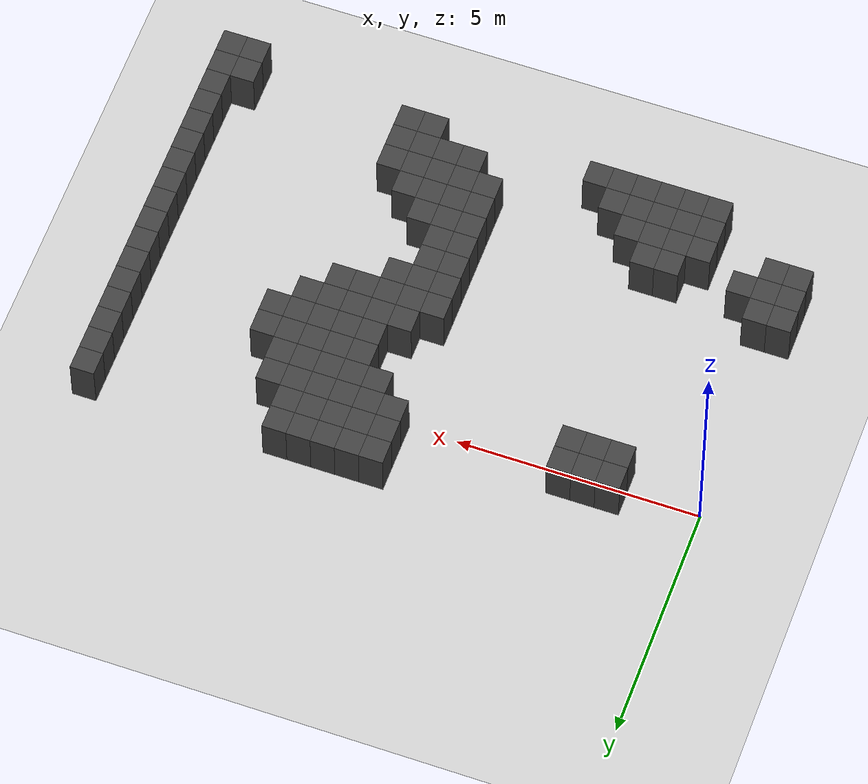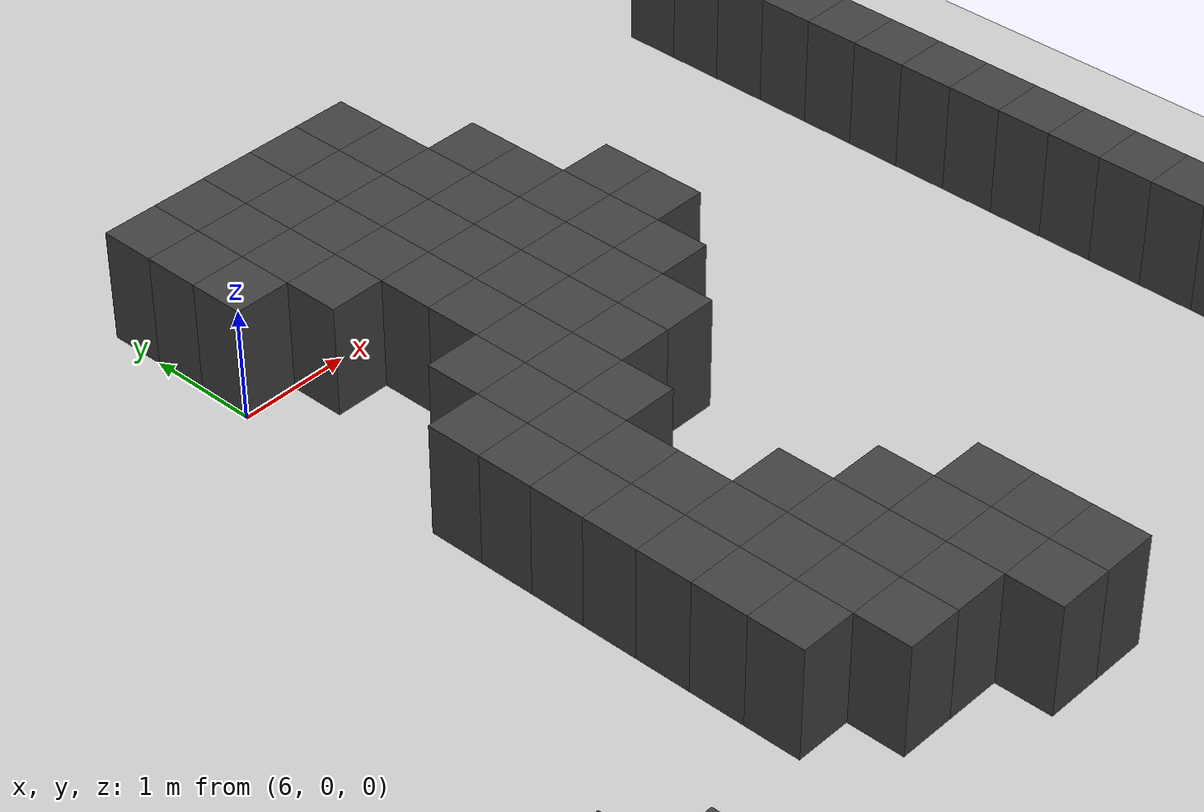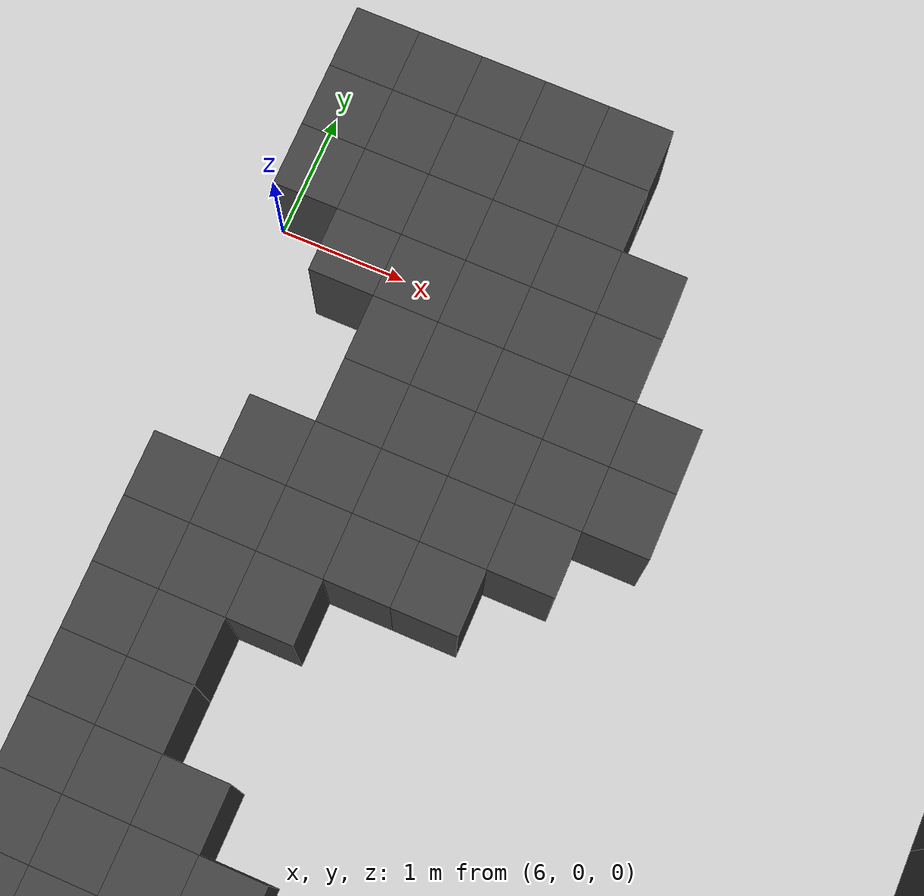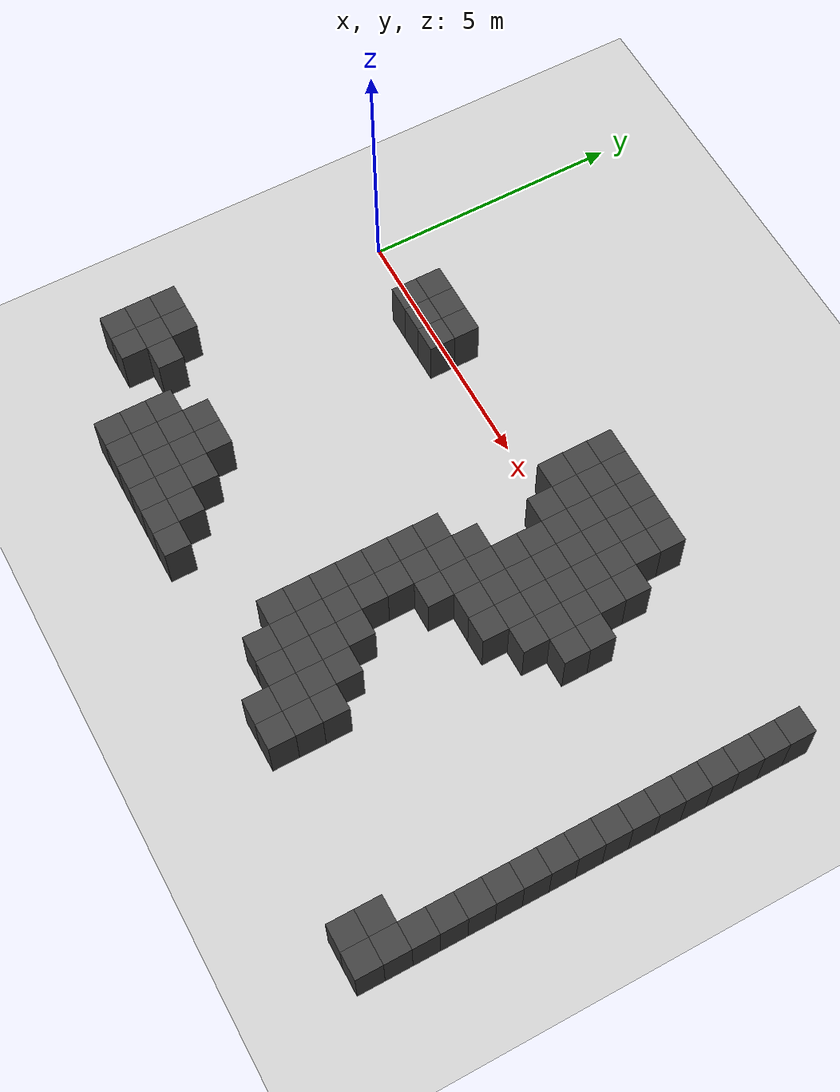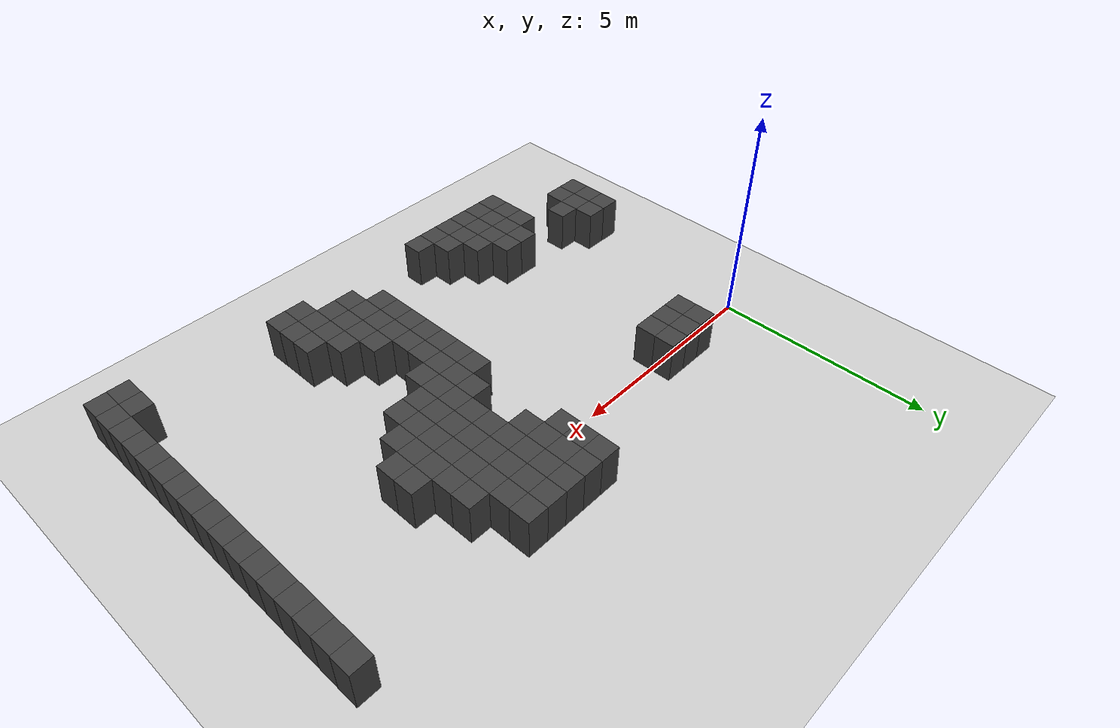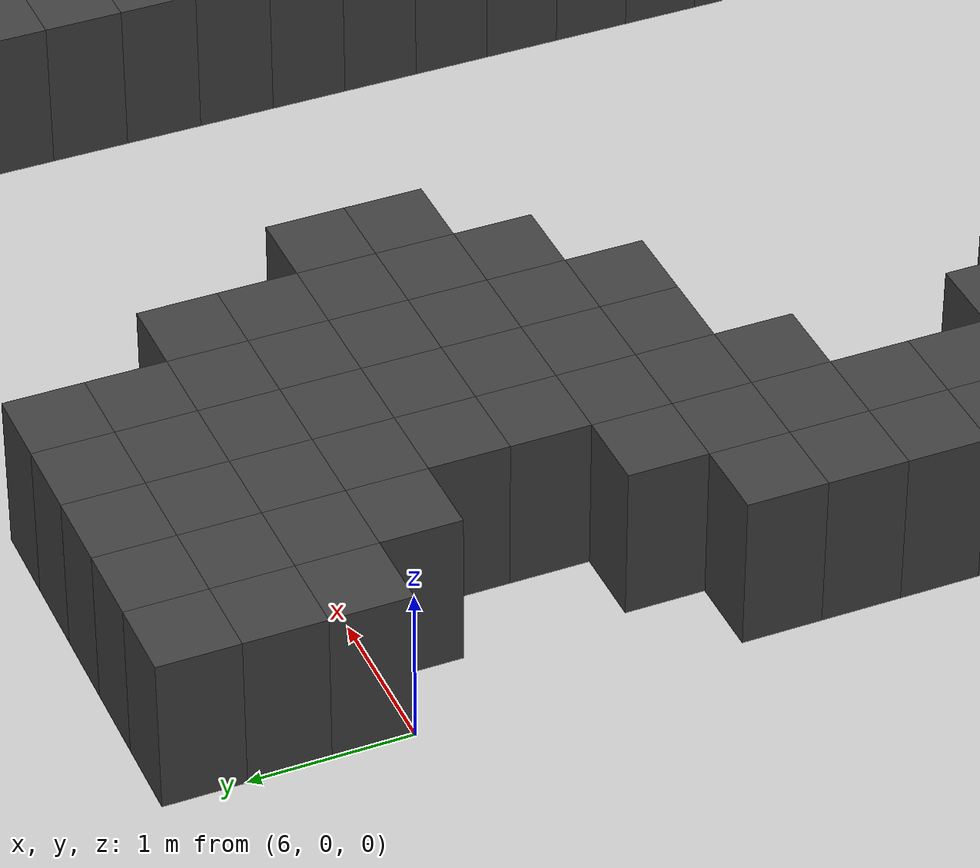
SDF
<sdf version="1.7">
 <world name="map_9152">
  <model name="ground_plane">
   <static>true</static>
   <link name="link">
    <collision name="collision">
     <geometry><plane><normal>0 0 1</normal><size>200 200</size></plane></geometry>
    </collision>
    <visual name="visual">
     <geometry><plane><normal>0 0 1</normal><size>200 200</size></plane></geometry>
     <material><ambient>0.8 0.8 0.8 1</ambient><diffuse>0.8 0.8 0.8 1</diffuse></material>
    </visual>
   </link>
  </model>
  <model name="maze_environment">
   <static>true</static>
   <link name="wall_376">
    <pose>6.250 1.250 0.500 0 0 0</pose>
    <collision name="col"><geometry><box><size>0.5 0.5 1.0</size></box></geometry></collision>
    <visual name="vis">
     <geometry><box><size>0.5 0.5 1.0</size></box></geometry>
     <material><ambient>0.15 0.15 0.15 1</ambient><diffuse>0.25 0.25 0.25 1</diffuse></material>
    </visual>
   </link>
   <link name="wall_377">
    <pose>6.750 1.250 0.500 0 0 0</pose>
    <collision name="col"><geometry><box><size>0.5 0.5 1.0</size></box></geometry></collision>
    <visual name="vis">
     <geometry><box><size>0.5 0.5 1.0</size></box></geometry>
     <material><ambient>0.15 0.15 0.15 1</ambient><diffuse>0.25 0.25 0.25 1</diffuse></material>
    </visual>
   </link>
   <link name="wall_378">
    <pose>7.250 1.250 0.500 0 0 0</pose>
    <collision name="col"><geometry><box><size>0.5 0.5 1.0</size></box></geometry></collision>
    <visual name="vis">
     <geometry><box><size>0.5 0.5 1.0</size></box></geometry>
     <material><ambient>0.15 0.15 0.15 1</ambient><diffuse>0.25 0.25 0.25 1</diffuse></material>
    </visual>
   </link>
   <link name="wall_379">
    <pose>7.750 1.250 0.500 0 0 0</pose>
    <collision name="col"><geometry><box><size>0.5 0.5 1.0</size></box></geometry></collision>
    <visual name="vis">
     <geometry><box><size>0.5 0.5 1.0</size></box></geometry>
     <material><ambient>0.15 0.15 0.15 1</ambient><diffuse>0.25 0.25 0.25 1</diffuse></material>
    </visual>
   </link>
   <link name="wall_380">
    <pose>8.250 1.250 0.500 0 0 0</pose>
    <collision name="col"><geometry><box><size>0.5 0.5 1.0</size></box></geometry></collision>
    <visual name="vis">
     <geometry><box><size>0.5 0.5 1.0</size></box></geometry>
     <material><ambient>0.15 0.15 0.15 1</ambient><diffuse>0.25 0.25 0.25 1</diffuse></material>
    </visual>
   </link>
   <link name="wall_381">
    <pose>12.250 1.250 0.500 0 0 0</pose>
    <collision name="col"><geometry><box><size>0.5 0.5 1.0</size></box></geometry></collision>
    <visual name="vis">
     <geometry><box><size>0.5 0.5 1.0</size></box></geometry>
     <material><ambient>0.15 0.15 0.15 1</ambient><diffuse>0.25 0.25 0.25 1</diffuse></material>
    </visual>
   </link>
   <link name="wall_385">
    <pose>6.250 0.750 0.500 0 0 0</pose>
    <collision name="col"><geometry><box><size>0.5 0.5 1.0</size></box></geometry></collision>
    <visual name="vis">
     <geometry><box><size>0.5 0.5 1.0</size></box></geometry>
     <material><ambient>0.15 0.15 0.15 1</ambient><diffuse>0.25 0.25 0.25 1</diffuse></material>
    </visual>
   </link>
   <link name="wall_386">
    <pose>6.750 0.750 0.500 0 0 0</pose>
    <collision name="col"><geometry><box><size>0.5 0.5 1.0</size></box></geometry></collision>
    <visual name="vis">
     <geometry><box><size>0.5 0.5 1.0</size></box></geometry>
     <material><ambient>0.15 0.15 0.15 1</ambient><diffuse>0.25 0.25 0.25 1</diffuse></material>
    </visual>
   </link>
   <link name="wall_387">
    <pose>7.250 0.750 0.500 0 0 0</pose>
    <collision name="col"><geometry><box><size>0.5 0.5 1.0</size></box></geometry></collision>
    <visual name="vis">
     <geometry><box><size>0.5 0.5 1.0</size></box></geometry>
     <material><ambient>0.15 0.15 0.15 1</ambient><diffuse>0.25 0.25 0.25 1</diffuse></material>
    </visual>
   </link>
   <link name="wall_388">
    <pose>7.750 0.750 0.500 0 0 0</pose>
    <collision name="col"><geometry><box><size>0.5 0.5 1.0</size></box></geometry></collision>
    <visual name="vis">
     <geometry><box><size>0.5 0.5 1.0</size></box></geometry>
     <material><ambient>0.15 0.15 0.15 1</ambient><diffuse>0.25 0.25 0.25 1</diffuse></material>
    </visual>
   </link>
   <link name="wall_389">
    <pose>8.250 0.750 0.500 0 0 0</pose>
    <collision name="col"><geometry><box><size>0.5 0.5 1.0</size></box></geometry></collision>
    <visual name="vis">
     <geometry><box><size>0.5 0.5 1.0</size></box></geometry>
     <material><ambient>0.15 0.15 0.15 1</ambient><diffuse>0.25 0.25 0.25 1</diffuse></material>
    </visual>
   </link>
   <link name="wall_390">
    <pose>12.250 0.750 0.500 0 0 0</pose>
    <collision name="col"><geometry><box><size>0.5 0.5 1.0</size></box></geometry></collision>
    <visual name="vis">
     <geometry><box><size>0.5 0.5 1.0</size></box></geometry>
     <material><ambient>0.15 0.15 0.15 1</ambient><diffuse>0.25 0.25 0.25 1</diffuse></material>
    </visual>
   </link>
   <link name="wall_400">
    <pose>1.750 0.250 0.500 0 0 0</pose>
    <collision name="col"><geometry><box><size>0.5 0.5 1.0</size></box></geometry></collision>
    <visual name="vis">
     <geometry><box><size>0.5 0.5 1.0</size></box></geometry>
     <material><ambient>0.15 0.15 0.15 1</ambient><diffuse>0.25 0.25 0.25 1</diffuse></material>
    </visual>
   </link>
   <link name="wall_401">
    <pose>2.250 0.250 0.500 0 0 0</pose>
    <collision name="col"><geometry><box><size>0.5 0.5 1.0</size></box></geometry></collision>
    <visual name="vis">
     <geometry><box><size>0.5 0.5 1.0</size></box></geometry>
     <material><ambient>0.15 0.15 0.15 1</ambient><diffuse>0.25 0.25 0.25 1</diffuse></material>
    </visual>
   </link>
   <link name="wall_402">
    <pose>2.750 0.250 0.500 0 0 0</pose>
    <collision name="col"><geometry><box><size>0.5 0.5 1.0</size></box></geometry></collision>
    <visual name="vis">
     <geometry><box><size>0.5 0.5 1.0</size></box></geometry>
     <material><ambient>0.15 0.15 0.15 1</ambient><diffuse>0.25 0.25 0.25 1</diffuse></material>
    </visual>
   </link>
   <link name="wall_403">
    <pose>6.250 0.250 0.500 0 0 0</pose>
    <collision name="col"><geometry><box><size>0.5 0.5 1.0</size></box></geometry></collision>
    <visual name="vis">
     <geometry><box><size>0.5 0.5 1.0</size></box></geometry>
     <material><ambient>0.15 0.15 0.15 1</ambient><diffuse>0.25 0.25 0.25 1</diffuse></material>
    </visual>
   </link>
   <link name="wall_404">
    <pose>6.750 0.250 0.500 0 0 0</pose>
    <collision name="col"><geometry><box><size>0.5 0.5 1.0</size></box></geometry></collision>
    <visual name="vis">
     <geometry><box><size>0.5 0.5 1.0</size></box></geometry>
     <material><ambient>0.15 0.15 0.15 1</ambient><diffuse>0.25 0.25 0.25 1</diffuse></material>
    </visual>
   </link>
   <link name="wall_405">
    <pose>7.250 0.250 0.500 0 0 0</pose>
    <collision name="col"><geometry><box><size>0.5 0.5 1.0</size></box></geometry></collision>
    <visual name="vis">
     <geometry><box><size>0.5 0.5 1.0</size></box></geometry>
     <material><ambient>0.15 0.15 0.15 1</ambient><diffuse>0.25 0.25 0.25 1</diffuse></material>
    </visual>
   </link>
   <link name="wall_406">
    <pose>7.750 0.250 0.500 0 0 0</pose>
    <collision name="col"><geometry><box><size>0.5 0.5 1.0</size></box></geometry></collision>
    <visual name="vis">
     <geometry><box><size>0.5 0.5 1.0</size></box></geometry>
     <material><ambient>0.15 0.15 0.15 1</ambient><diffuse>0.25 0.25 0.25 1</diffuse></material>
    </visual>
   </link>
   <link name="wall_407">
    <pose>8.250 0.250 0.500 0 0 0</pose>
    <collision name="col"><geometry><box><size>0.5 0.5 1.0</size></box></geometry></collision>
    <visual name="vis">
     <geometry><box><size>0.5 0.5 1.0</size></box></geometry>
     <material><ambient>0.15 0.15 0.15 1</ambient><diffuse>0.25 0.25 0.25 1</diffuse></material>
    </visual>
   </link>
   <link name="wall_408">
    <pose>8.750 0.250 0.500 0 0 0</pose>
    <collision name="col"><geometry><box><size>0.5 0.5 1.0</size></box></geometry></collision>
    <visual name="vis">
     <geometry><box><size>0.5 0.5 1.0</size></box></geometry>
     <material><ambient>0.15 0.15 0.15 1</ambient><diffuse>0.25 0.25 0.25 1</diffuse></material>
    </visual>
   </link>
   <link name="wall_409">
    <pose>12.250 0.250 0.500 0 0 0</pose>
    <collision name="col"><geometry><box><size>0.5 0.5 1.0</size></box></geometry></collision>
    <visual name="vis">
     <geometry><box><size>0.5 0.5 1.0</size></box></geometry>
     <material><ambient>0.15 0.15 0.15 1</ambient><diffuse>0.25 0.25 0.25 1</diffuse></material>
    </visual>
   </link>
   <link name="wall_421">
    <pose>1.750 -0.250 0.500 0 0 0</pose>
    <collision name="col"><geometry><box><size>0.5 0.5 1.0</size></box></geometry></collision>
    <visual name="vis">
     <geometry><box><size>0.5 0.5 1.0</size></box></geometry>
     <material><ambient>0.15 0.15 0.15 1</ambient><diffuse>0.25 0.25 0.25 1</diffuse></material>
    </visual>
   </link>
   <link name="wall_422">
    <pose>2.250 -0.250 0.500 0 0 0</pose>
    <collision name="col"><geometry><box><size>0.5 0.5 1.0</size></box></geometry></collision>
    <visual name="vis">
     <geometry><box><size>0.5 0.5 1.0</size></box></geometry>
     <material><ambient>0.15 0.15 0.15 1</ambient><diffuse>0.25 0.25 0.25 1</diffuse></material>
    </visual>
   </link>
   <link name="wall_423">
    <pose>2.750 -0.250 0.500 0 0 0</pose>
    <collision name="col"><geometry><box><size>0.5 0.5 1.0</size></box></geometry></collision>
    <visual name="vis">
     <geometry><box><size>0.5 0.5 1.0</size></box></geometry>
     <material><ambient>0.15 0.15 0.15 1</ambient><diffuse>0.25 0.25 0.25 1</diffuse></material>
    </visual>
   </link>
   <link name="wall_424">
    <pose>6.750 -0.250 0.500 0 0 0</pose>
    <collision name="col"><geometry><box><size>0.5 0.5 1.0</size></box></geometry></collision>
    <visual name="vis">
     <geometry><box><size>0.5 0.5 1.0</size></box></geometry>
     <material><ambient>0.15 0.15 0.15 1</ambient><diffuse>0.25 0.25 0.25 1</diffuse></material>
    </visual>
   </link>
   <link name="wall_425">
    <pose>7.250 -0.250 0.500 0 0 0</pose>
    <collision name="col"><geometry><box><size>0.5 0.5 1.0</size></box></geometry></collision>
    <visual name="vis">
     <geometry><box><size>0.5 0.5 1.0</size></box></geometry>
     <material><ambient>0.15 0.15 0.15 1</ambient><diffuse>0.25 0.25 0.25 1</diffuse></material>
    </visual>
   </link>
   <link name="wall_426">
    <pose>7.750 -0.250 0.500 0 0 0</pose>
    <collision name="col"><geometry><box><size>0.5 0.5 1.0</size></box></geometry></collision>
    <visual name="vis">
     <geometry><box><size>0.5 0.5 1.0</size></box></geometry>
     <material><ambient>0.15 0.15 0.15 1</ambient><diffuse>0.25 0.25 0.25 1</diffuse></material>
    </visual>
   </link>
   <link name="wall_427">
    <pose>8.250 -0.250 0.500 0 0 0</pose>
    <collision name="col"><geometry><box><size>0.5 0.5 1.0</size></box></geometry></collision>
    <visual name="vis">
     <geometry><box><size>0.5 0.5 1.0</size></box></geometry>
     <material><ambient>0.15 0.15 0.15 1</ambient><diffuse>0.25 0.25 0.25 1</diffuse></material>
    </visual>
   </link>
   <link name="wall_428">
    <pose>8.750 -0.250 0.500 0 0 0</pose>
    <collision name="col"><geometry><box><size>0.5 0.5 1.0</size></box></geometry></collision>
    <visual name="vis">
     <geometry><box><size>0.5 0.5 1.0</size></box></geometry>
     <material><ambient>0.15 0.15 0.15 1</ambient><diffuse>0.25 0.25 0.25 1</diffuse></material>
    </visual>
   </link>
   <link name="wall_429">
    <pose>12.250 -0.250 0.500 0 0 0</pose>
    <collision name="col"><geometry><box><size>0.5 0.5 1.0</size></box></geometry></collision>
    <visual name="vis">
     <geometry><box><size>0.5 0.5 1.0</size></box></geometry>
     <material><ambient>0.15 0.15 0.15 1</ambient><diffuse>0.25 0.25 0.25 1</diffuse></material>
    </visual>
   </link>
   <link name="wall_441">
    <pose>7.250 -0.750 0.500 0 0 0</pose>
    <collision name="col"><geometry><box><size>0.5 0.5 1.0</size></box></geometry></collision>
    <visual name="vis">
     <geometry><box><size>0.5 0.5 1.0</size></box></geometry>
     <material><ambient>0.15 0.15 0.15 1</ambient><diffuse>0.25 0.25 0.25 1</diffuse></material>
    </visual>
   </link>
   <link name="wall_442">
    <pose>7.750 -0.750 0.500 0 0 0</pose>
    <collision name="col"><geometry><box><size>0.5 0.5 1.0</size></box></geometry></collision>
    <visual name="vis">
     <geometry><box><size>0.5 0.5 1.0</size></box></geometry>
     <material><ambient>0.15 0.15 0.15 1</ambient><diffuse>0.25 0.25 0.25 1</diffuse></material>
    </visual>
   </link>
   <link name="wall_443">
    <pose>8.250 -0.750 0.500 0 0 0</pose>
    <collision name="col"><geometry><box><size>0.5 0.5 1.0</size></box></geometry></collision>
    <visual name="vis">
     <geometry><box><size>0.5 0.5 1.0</size></box></geometry>
     <material><ambient>0.15 0.15 0.15 1</ambient><diffuse>0.25 0.25 0.25 1</diffuse></material>
    </visual>
   </link>
   <link name="wall_444">
    <pose>8.750 -0.750 0.500 0 0 0</pose>
    <collision name="col"><geometry><box><size>0.5 0.5 1.0</size></box></geometry></collision>
    <visual name="vis">
     <geometry><box><size>0.5 0.5 1.0</size></box></geometry>
     <material><ambient>0.15 0.15 0.15 1</ambient><diffuse>0.25 0.25 0.25 1</diffuse></material>
    </visual>
   </link>
   <link name="wall_445">
    <pose>9.250 -0.750 0.500 0 0 0</pose>
    <collision name="col"><geometry><box><size>0.5 0.5 1.0</size></box></geometry></collision>
    <visual name="vis">
     <geometry><box><size>0.5 0.5 1.0</size></box></geometry>
     <material><ambient>0.15 0.15 0.15 1</ambient><diffuse>0.25 0.25 0.25 1</diffuse></material>
    </visual>
   </link>
   <link name="wall_446">
    <pose>12.250 -0.750 0.500 0 0 0</pose>
    <collision name="col"><geometry><box><size>0.5 0.5 1.0</size></box></geometry></collision>
    <visual name="vis">
     <geometry><box><size>0.5 0.5 1.0</size></box></geometry>
     <material><ambient>0.15 0.15 0.15 1</ambient><diffuse>0.25 0.25 0.25 1</diffuse></material>
    </visual>
   </link>
   <link name="wall_455">
    <pose>7.250 -1.250 0.500 0 0 0</pose>
    <collision name="col"><geometry><box><size>0.5 0.5 1.0</size></box></geometry></collision>
    <visual name="vis">
     <geometry><box><size>0.5 0.5 1.0</size></box></geometry>
     <material><ambient>0.15 0.15 0.15 1</ambient><diffuse>0.25 0.25 0.25 1</diffuse></material>
    </visual>
   </link>
   <link name="wall_456">
    <pose>7.750 -1.250 0.500 0 0 0</pose>
    <collision name="col"><geometry><box><size>0.5 0.5 1.0</size></box></geometry></collision>
    <visual name="vis">
     <geometry><box><size>0.5 0.5 1.0</size></box></geometry>
     <material><ambient>0.15 0.15 0.15 1</ambient><diffuse>0.25 0.25 0.25 1</diffuse></material>
    </visual>
   </link>
   <link name="wall_457">
    <pose>8.250 -1.250 0.500 0 0 0</pose>
    <collision name="col"><geometry><box><size>0.5 0.5 1.0</size></box></geometry></collision>
    <visual name="vis">
     <geometry><box><size>0.5 0.5 1.0</size></box></geometry>
     <material><ambient>0.15 0.15 0.15 1</ambient><diffuse>0.25 0.25 0.25 1</diffuse></material>
    </visual>
   </link>
   <link name="wall_458">
    <pose>8.750 -1.250 0.500 0 0 0</pose>
    <collision name="col"><geometry><box><size>0.5 0.5 1.0</size></box></geometry></collision>
    <visual name="vis">
     <geometry><box><size>0.5 0.5 1.0</size></box></geometry>
     <material><ambient>0.15 0.15 0.15 1</ambient><diffuse>0.25 0.25 0.25 1</diffuse></material>
    </visual>
   </link>
   <link name="wall_459">
    <pose>9.250 -1.250 0.500 0 0 0</pose>
    <collision name="col"><geometry><box><size>0.5 0.5 1.0</size></box></geometry></collision>
    <visual name="vis">
     <geometry><box><size>0.5 0.5 1.0</size></box></geometry>
     <material><ambient>0.15 0.15 0.15 1</ambient><diffuse>0.25 0.25 0.25 1</diffuse></material>
    </visual>
   </link>
   <link name="wall_460">
    <pose>12.250 -1.250 0.500 0 0 0</pose>
    <collision name="col"><geometry><box><size>0.5 0.5 1.0</size></box></geometry></collision>
    <visual name="vis">
     <geometry><box><size>0.5 0.5 1.0</size></box></geometry>
     <material><ambient>0.15 0.15 0.15 1</ambient><diffuse>0.25 0.25 0.25 1</diffuse></material>
    </visual>
   </link>
   <link name="wall_467">
    <pose>6.750 -1.750 0.500 0 0 0</pose>
    <collision name="col"><geometry><box><size>0.5 0.5 1.0</size></box></geometry></collision>
    <visual name="vis">
     <geometry><box><size>0.5 0.5 1.0</size></box></geometry>
     <material><ambient>0.15 0.15 0.15 1</ambient><diffuse>0.25 0.25 0.25 1</diffuse></material>
    </visual>
   </link>
   <link name="wall_468">
    <pose>7.250 -1.750 0.500 0 0 0</pose>
    <collision name="col"><geometry><box><size>0.5 0.5 1.0</size></box></geometry></collision>
    <visual name="vis">
     <geometry><box><size>0.5 0.5 1.0</size></box></geometry>
     <material><ambient>0.15 0.15 0.15 1</ambient><diffuse>0.25 0.25 0.25 1</diffuse></material>
    </visual>
   </link>
   <link name="wall_469">
    <pose>7.750 -1.750 0.500 0 0 0</pose>
    <collision name="col"><geometry><box><size>0.5 0.5 1.0</size></box></geometry></collision>
    <visual name="vis">
     <geometry><box><size>0.5 0.5 1.0</size></box></geometry>
     <material><ambient>0.15 0.15 0.15 1</ambient><diffuse>0.25 0.25 0.25 1</diffuse></material>
    </visual>
   </link>
   <link name="wall_470">
    <pose>8.250 -1.750 0.500 0 0 0</pose>
    <collision name="col"><geometry><box><size>0.5 0.5 1.0</size></box></geometry></collision>
    <visual name="vis">
     <geometry><box><size>0.5 0.5 1.0</size></box></geometry>
     <material><ambient>0.15 0.15 0.15 1</ambient><diffuse>0.25 0.25 0.25 1</diffuse></material>
    </visual>
   </link>
   <link name="wall_471">
    <pose>8.750 -1.750 0.500 0 0 0</pose>
    <collision name="col"><geometry><box><size>0.5 0.5 1.0</size></box></geometry></collision>
    <visual name="vis">
     <geometry><box><size>0.5 0.5 1.0</size></box></geometry>
     <material><ambient>0.15 0.15 0.15 1</ambient><diffuse>0.25 0.25 0.25 1</diffuse></material>
    </visual>
   </link>
   <link name="wall_472">
    <pose>12.250 -1.750 0.500 0 0 0</pose>
    <collision name="col"><geometry><box><size>0.5 0.5 1.0</size></box></geometry></collision>
    <visual name="vis">
     <geometry><box><size>0.5 0.5 1.0</size></box></geometry>
     <material><ambient>0.15 0.15 0.15 1</ambient><diffuse>0.25 0.25 0.25 1</diffuse></material>
    </visual>
   </link>
   <link name="wall_480">
    <pose>6.250 -2.250 0.500 0 0 0</pose>
    <collision name="col"><geometry><box><size>0.5 0.5 1.0</size></box></geometry></collision>
    <visual name="vis">
     <geometry><box><size>0.5 0.5 1.0</size></box></geometry>
     <material><ambient>0.15 0.15 0.15 1</ambient><diffuse>0.25 0.25 0.25 1</diffuse></material>
    </visual>
   </link>
   <link name="wall_481">
    <pose>6.750 -2.250 0.500 0 0 0</pose>
    <collision name="col"><geometry><box><size>0.5 0.5 1.0</size></box></geometry></collision>
    <visual name="vis">
     <geometry><box><size>0.5 0.5 1.0</size></box></geometry>
     <material><ambient>0.15 0.15 0.15 1</ambient><diffuse>0.25 0.25 0.25 1</diffuse></material>
    </visual>
   </link>
   <link name="wall_482">
    <pose>7.250 -2.250 0.500 0 0 0</pose>
    <collision name="col"><geometry><box><size>0.5 0.5 1.0</size></box></geometry></collision>
    <visual name="vis">
     <geometry><box><size>0.5 0.5 1.0</size></box></geometry>
     <material><ambient>0.15 0.15 0.15 1</ambient><diffuse>0.25 0.25 0.25 1</diffuse></material>
    </visual>
   </link>
   <link name="wall_483">
    <pose>7.750 -2.250 0.500 0 0 0</pose>
    <collision name="col"><geometry><box><size>0.5 0.5 1.0</size></box></geometry></collision>
    <visual name="vis">
     <geometry><box><size>0.5 0.5 1.0</size></box></geometry>
     <material><ambient>0.15 0.15 0.15 1</ambient><diffuse>0.25 0.25 0.25 1</diffuse></material>
    </visual>
   </link>
   <link name="wall_484">
    <pose>8.250 -2.250 0.500 0 0 0</pose>
    <collision name="col"><geometry><box><size>0.5 0.5 1.0</size></box></geometry></collision>
    <visual name="vis">
     <geometry><box><size>0.5 0.5 1.0</size></box></geometry>
     <material><ambient>0.15 0.15 0.15 1</ambient><diffuse>0.25 0.25 0.25 1</diffuse></material>
    </visual>
   </link>
   <link name="wall_485">
    <pose>12.250 -2.250 0.500 0 0 0</pose>
    <collision name="col"><geometry><box><size>0.5 0.5 1.0</size></box></geometry></collision>
    <visual name="vis">
     <geometry><box><size>0.5 0.5 1.0</size></box></geometry>
     <material><ambient>0.15 0.15 0.15 1</ambient><diffuse>0.25 0.25 0.25 1</diffuse></material>
    </visual>
   </link>
   <link name="wall_494">
    <pose>6.250 -2.750 0.500 0 0 0</pose>
    <collision name="col"><geometry><box><size>0.5 0.5 1.0</size></box></geometry></collision>
    <visual name="vis">
     <geometry><box><size>0.5 0.5 1.0</size></box></geometry>
     <material><ambient>0.15 0.15 0.15 1</ambient><diffuse>0.25 0.25 0.25 1</diffuse></material>
    </visual>
   </link>
   <link name="wall_495">
    <pose>6.750 -2.750 0.500 0 0 0</pose>
    <collision name="col"><geometry><box><size>0.5 0.5 1.0</size></box></geometry></collision>
    <visual name="vis">
     <geometry><box><size>0.5 0.5 1.0</size></box></geometry>
     <material><ambient>0.15 0.15 0.15 1</ambient><diffuse>0.25 0.25 0.25 1</diffuse></material>
    </visual>
   </link>
   <link name="wall_496">
    <pose>7.250 -2.750 0.500 0 0 0</pose>
    <collision name="col"><geometry><box><size>0.5 0.5 1.0</size></box></geometry></collision>
    <visual name="vis">
     <geometry><box><size>0.5 0.5 1.0</size></box></geometry>
     <material><ambient>0.15 0.15 0.15 1</ambient><diffuse>0.25 0.25 0.25 1</diffuse></material>
    </visual>
   </link>
   <link name="wall_497">
    <pose>12.250 -2.750 0.500 0 0 0</pose>
    <collision name="col"><geometry><box><size>0.5 0.5 1.0</size></box></geometry></collision>
    <visual name="vis">
     <geometry><box><size>0.5 0.5 1.0</size></box></geometry>
     <material><ambient>0.15 0.15 0.15 1</ambient><diffuse>0.25 0.25 0.25 1</diffuse></material>
    </visual>
   </link>
   <link name="wall_504">
    <pose>6.250 -3.250 0.500 0 0 0</pose>
    <collision name="col"><geometry><box><size>0.5 0.5 1.0</size></box></geometry></collision>
    <visual name="vis">
     <geometry><box><size>0.5 0.5 1.0</size></box></geometry>
     <material><ambient>0.15 0.15 0.15 1</ambient><diffuse>0.25 0.25 0.25 1</diffuse></material>
    </visual>
   </link>
   <link name="wall_505">
    <pose>6.750 -3.250 0.500 0 0 0</pose>
    <collision name="col"><geometry><box><size>0.5 0.5 1.0</size></box></geometry></collision>
    <visual name="vis">
     <geometry><box><size>0.5 0.5 1.0</size></box></geometry>
     <material><ambient>0.15 0.15 0.15 1</ambient><diffuse>0.25 0.25 0.25 1</diffuse></material>
    </visual>
   </link>
   <link name="wall_506">
    <pose>12.250 -3.250 0.500 0 0 0</pose>
    <collision name="col"><geometry><box><size>0.5 0.5 1.0</size></box></geometry></collision>
    <visual name="vis">
     <geometry><box><size>0.5 0.5 1.0</size></box></geometry>
     <material><ambient>0.15 0.15 0.15 1</ambient><diffuse>0.25 0.25 0.25 1</diffuse></material>
    </visual>
   </link>
   <link name="wall_512">
    <pose>6.250 -3.750 0.500 0 0 0</pose>
    <collision name="col"><geometry><box><size>0.5 0.5 1.0</size></box></geometry></collision>
    <visual name="vis">
     <geometry><box><size>0.5 0.5 1.0</size></box></geometry>
     <material><ambient>0.15 0.15 0.15 1</ambient><diffuse>0.25 0.25 0.25 1</diffuse></material>
    </visual>
   </link>
   <link name="wall_513">
    <pose>6.750 -3.750 0.500 0 0 0</pose>
    <collision name="col"><geometry><box><size>0.5 0.5 1.0</size></box></geometry></collision>
    <visual name="vis">
     <geometry><box><size>0.5 0.5 1.0</size></box></geometry>
     <material><ambient>0.15 0.15 0.15 1</ambient><diffuse>0.25 0.25 0.25 1</diffuse></material>
    </visual>
   </link>
   <link name="wall_514">
    <pose>12.250 -3.750 0.500 0 0 0</pose>
    <collision name="col"><geometry><box><size>0.5 0.5 1.0</size></box></geometry></collision>
    <visual name="vis">
     <geometry><box><size>0.5 0.5 1.0</size></box></geometry>
     <material><ambient>0.15 0.15 0.15 1</ambient><diffuse>0.25 0.25 0.25 1</diffuse></material>
    </visual>
   </link>
   <link name="wall_521">
    <pose>-0.250 -4.250 0.500 0 0 0</pose>
    <collision name="col"><geometry><box><size>0.5 0.5 1.0</size></box></geometry></collision>
    <visual name="vis">
     <geometry><box><size>0.5 0.5 1.0</size></box></geometry>
     <material><ambient>0.15 0.15 0.15 1</ambient><diffuse>0.25 0.25 0.25 1</diffuse></material>
    </visual>
   </link>
   <link name="wall_522">
    <pose>0.250 -4.250 0.500 0 0 0</pose>
    <collision name="col"><geometry><box><size>0.5 0.5 1.0</size></box></geometry></collision>
    <visual name="vis">
     <geometry><box><size>0.5 0.5 1.0</size></box></geometry>
     <material><ambient>0.15 0.15 0.15 1</ambient><diffuse>0.25 0.25 0.25 1</diffuse></material>
    </visual>
   </link>
   <link name="wall_523">
    <pose>6.250 -4.250 0.500 0 0 0</pose>
    <collision name="col"><geometry><box><size>0.5 0.5 1.0</size></box></geometry></collision>
    <visual name="vis">
     <geometry><box><size>0.5 0.5 1.0</size></box></geometry>
     <material><ambient>0.15 0.15 0.15 1</ambient><diffuse>0.25 0.25 0.25 1</diffuse></material>
    </visual>
   </link>
   <link name="wall_524">
    <pose>6.750 -4.250 0.500 0 0 0</pose>
    <collision name="col"><geometry><box><size>0.5 0.5 1.0</size></box></geometry></collision>
    <visual name="vis">
     <geometry><box><size>0.5 0.5 1.0</size></box></geometry>
     <material><ambient>0.15 0.15 0.15 1</ambient><diffuse>0.25 0.25 0.25 1</diffuse></material>
    </visual>
   </link>
   <link name="wall_525">
    <pose>7.250 -4.250 0.500 0 0 0</pose>
    <collision name="col"><geometry><box><size>0.5 0.5 1.0</size></box></geometry></collision>
    <visual name="vis">
     <geometry><box><size>0.5 0.5 1.0</size></box></geometry>
     <material><ambient>0.15 0.15 0.15 1</ambient><diffuse>0.25 0.25 0.25 1</diffuse></material>
    </visual>
   </link>
   <link name="wall_526">
    <pose>12.250 -4.250 0.500 0 0 0</pose>
    <collision name="col"><geometry><box><size>0.5 0.5 1.0</size></box></geometry></collision>
    <visual name="vis">
     <geometry><box><size>0.5 0.5 1.0</size></box></geometry>
     <material><ambient>0.15 0.15 0.15 1</ambient><diffuse>0.25 0.25 0.25 1</diffuse></material>
    </visual>
   </link>
   <link name="wall_532">
    <pose>-0.250 -4.750 0.500 0 0 0</pose>
    <collision name="col"><geometry><box><size>0.5 0.5 1.0</size></box></geometry></collision>
    <visual name="vis">
     <geometry><box><size>0.5 0.5 1.0</size></box></geometry>
     <material><ambient>0.15 0.15 0.15 1</ambient><diffuse>0.25 0.25 0.25 1</diffuse></material>
    </visual>
   </link>
   <link name="wall_533">
    <pose>0.250 -4.750 0.500 0 0 0</pose>
    <collision name="col"><geometry><box><size>0.5 0.5 1.0</size></box></geometry></collision>
    <visual name="vis">
     <geometry><box><size>0.5 0.5 1.0</size></box></geometry>
     <material><ambient>0.15 0.15 0.15 1</ambient><diffuse>0.25 0.25 0.25 1</diffuse></material>
    </visual>
   </link>
   <link name="wall_534">
    <pose>0.750 -4.750 0.500 0 0 0</pose>
    <collision name="col"><geometry><box><size>0.5 0.5 1.0</size></box></geometry></collision>
    <visual name="vis">
     <geometry><box><size>0.5 0.5 1.0</size></box></geometry>
     <material><ambient>0.15 0.15 0.15 1</ambient><diffuse>0.25 0.25 0.25 1</diffuse></material>
    </visual>
   </link>
   <link name="wall_535">
    <pose>2.250 -4.750 0.500 0 0 0</pose>
    <collision name="col"><geometry><box><size>0.5 0.5 1.0</size></box></geometry></collision>
    <visual name="vis">
     <geometry><box><size>0.5 0.5 1.0</size></box></geometry>
     <material><ambient>0.15 0.15 0.15 1</ambient><diffuse>0.25 0.25 0.25 1</diffuse></material>
    </visual>
   </link>
   <link name="wall_536">
    <pose>2.750 -4.750 0.500 0 0 0</pose>
    <collision name="col"><geometry><box><size>0.5 0.5 1.0</size></box></geometry></collision>
    <visual name="vis">
     <geometry><box><size>0.5 0.5 1.0</size></box></geometry>
     <material><ambient>0.15 0.15 0.15 1</ambient><diffuse>0.25 0.25 0.25 1</diffuse></material>
    </visual>
   </link>
   <link name="wall_537">
    <pose>6.250 -4.750 0.500 0 0 0</pose>
    <collision name="col"><geometry><box><size>0.5 0.5 1.0</size></box></geometry></collision>
    <visual name="vis">
     <geometry><box><size>0.5 0.5 1.0</size></box></geometry>
     <material><ambient>0.15 0.15 0.15 1</ambient><diffuse>0.25 0.25 0.25 1</diffuse></material>
    </visual>
   </link>
   <link name="wall_538">
    <pose>6.750 -4.750 0.500 0 0 0</pose>
    <collision name="col"><geometry><box><size>0.5 0.5 1.0</size></box></geometry></collision>
    <visual name="vis">
     <geometry><box><size>0.5 0.5 1.0</size></box></geometry>
     <material><ambient>0.15 0.15 0.15 1</ambient><diffuse>0.25 0.25 0.25 1</diffuse></material>
    </visual>
   </link>
   <link name="wall_539">
    <pose>7.250 -4.750 0.500 0 0 0</pose>
    <collision name="col"><geometry><box><size>0.5 0.5 1.0</size></box></geometry></collision>
    <visual name="vis">
     <geometry><box><size>0.5 0.5 1.0</size></box></geometry>
     <material><ambient>0.15 0.15 0.15 1</ambient><diffuse>0.25 0.25 0.25 1</diffuse></material>
    </visual>
   </link>
   <link name="wall_540">
    <pose>7.750 -4.750 0.500 0 0 0</pose>
    <collision name="col"><geometry><box><size>0.5 0.5 1.0</size></box></geometry></collision>
    <visual name="vis">
     <geometry><box><size>0.5 0.5 1.0</size></box></geometry>
     <material><ambient>0.15 0.15 0.15 1</ambient><diffuse>0.25 0.25 0.25 1</diffuse></material>
    </visual>
   </link>
   <link name="wall_541">
    <pose>12.250 -4.750 0.500 0 0 0</pose>
    <collision name="col"><geometry><box><size>0.5 0.5 1.0</size></box></geometry></collision>
    <visual name="vis">
     <geometry><box><size>0.5 0.5 1.0</size></box></geometry>
     <material><ambient>0.15 0.15 0.15 1</ambient><diffuse>0.25 0.25 0.25 1</diffuse></material>
    </visual>
   </link>
   <link name="wall_547">
    <pose>-0.250 -5.250 0.500 0 0 0</pose>
    <collision name="col"><geometry><box><size>0.5 0.5 1.0</size></box></geometry></collision>
    <visual name="vis">
     <geometry><box><size>0.5 0.5 1.0</size></box></geometry>
     <material><ambient>0.15 0.15 0.15 1</ambient><diffuse>0.25 0.25 0.25 1</diffuse></material>
    </visual>
   </link>
   <link name="wall_548">
    <pose>0.250 -5.250 0.500 0 0 0</pose>
    <collision name="col"><geometry><box><size>0.5 0.5 1.0</size></box></geometry></collision>
    <visual name="vis">
     <geometry><box><size>0.5 0.5 1.0</size></box></geometry>
     <material><ambient>0.15 0.15 0.15 1</ambient><diffuse>0.25 0.25 0.25 1</diffuse></material>
    </visual>
   </link>
   <link name="wall_549">
    <pose>1.750 -5.250 0.500 0 0 0</pose>
    <collision name="col"><geometry><box><size>0.5 0.5 1.0</size></box></geometry></collision>
    <visual name="vis">
     <geometry><box><size>0.5 0.5 1.0</size></box></geometry>
     <material><ambient>0.15 0.15 0.15 1</ambient><diffuse>0.25 0.25 0.25 1</diffuse></material>
    </visual>
   </link>
   <link name="wall_550">
    <pose>2.250 -5.250 0.500 0 0 0</pose>
    <collision name="col"><geometry><box><size>0.5 0.5 1.0</size></box></geometry></collision>
    <visual name="vis">
     <geometry><box><size>0.5 0.5 1.0</size></box></geometry>
     <material><ambient>0.15 0.15 0.15 1</ambient><diffuse>0.25 0.25 0.25 1</diffuse></material>
    </visual>
   </link>
   <link name="wall_551">
    <pose>2.750 -5.250 0.500 0 0 0</pose>
    <collision name="col"><geometry><box><size>0.5 0.5 1.0</size></box></geometry></collision>
    <visual name="vis">
     <geometry><box><size>0.5 0.5 1.0</size></box></geometry>
     <material><ambient>0.15 0.15 0.15 1</ambient><diffuse>0.25 0.25 0.25 1</diffuse></material>
    </visual>
   </link>
   <link name="wall_552">
    <pose>3.250 -5.250 0.500 0 0 0</pose>
    <collision name="col"><geometry><box><size>0.5 0.5 1.0</size></box></geometry></collision>
    <visual name="vis">
     <geometry><box><size>0.5 0.5 1.0</size></box></geometry>
     <material><ambient>0.15 0.15 0.15 1</ambient><diffuse>0.25 0.25 0.25 1</diffuse></material>
    </visual>
   </link>
   <link name="wall_553">
    <pose>6.250 -5.250 0.500 0 0 0</pose>
    <collision name="col"><geometry><box><size>0.5 0.5 1.0</size></box></geometry></collision>
    <visual name="vis">
     <geometry><box><size>0.5 0.5 1.0</size></box></geometry>
     <material><ambient>0.15 0.15 0.15 1</ambient><diffuse>0.25 0.25 0.25 1</diffuse></material>
    </visual>
   </link>
   <link name="wall_554">
    <pose>6.750 -5.250 0.500 0 0 0</pose>
    <collision name="col"><geometry><box><size>0.5 0.5 1.0</size></box></geometry></collision>
    <visual name="vis">
     <geometry><box><size>0.5 0.5 1.0</size></box></geometry>
     <material><ambient>0.15 0.15 0.15 1</ambient><diffuse>0.25 0.25 0.25 1</diffuse></material>
    </visual>
   </link>
   <link name="wall_555">
    <pose>7.250 -5.250 0.500 0 0 0</pose>
    <collision name="col"><geometry><box><size>0.5 0.5 1.0</size></box></geometry></collision>
    <visual name="vis">
     <geometry><box><size>0.5 0.5 1.0</size></box></geometry>
     <material><ambient>0.15 0.15 0.15 1</ambient><diffuse>0.25 0.25 0.25 1</diffuse></material>
    </visual>
   </link>
   <link name="wall_556">
    <pose>7.750 -5.250 0.500 0 0 0</pose>
    <collision name="col"><geometry><box><size>0.5 0.5 1.0</size></box></geometry></collision>
    <visual name="vis">
     <geometry><box><size>0.5 0.5 1.0</size></box></geometry>
     <material><ambient>0.15 0.15 0.15 1</ambient><diffuse>0.25 0.25 0.25 1</diffuse></material>
    </visual>
   </link>
   <link name="wall_557">
    <pose>8.250 -5.250 0.500 0 0 0</pose>
    <collision name="col"><geometry><box><size>0.5 0.5 1.0</size></box></geometry></collision>
    <visual name="vis">
     <geometry><box><size>0.5 0.5 1.0</size></box></geometry>
     <material><ambient>0.15 0.15 0.15 1</ambient><diffuse>0.25 0.25 0.25 1</diffuse></material>
    </visual>
   </link>
   <link name="wall_558">
    <pose>12.250 -5.250 0.500 0 0 0</pose>
    <collision name="col"><geometry><box><size>0.5 0.5 1.0</size></box></geometry></collision>
    <visual name="vis">
     <geometry><box><size>0.5 0.5 1.0</size></box></geometry>
     <material><ambient>0.15 0.15 0.15 1</ambient><diffuse>0.25 0.25 0.25 1</diffuse></material>
    </visual>
   </link>
   <link name="wall_566">
    <pose>1.750 -5.750 0.500 0 0 0</pose>
    <collision name="col"><geometry><box><size>0.5 0.5 1.0</size></box></geometry></collision>
    <visual name="vis">
     <geometry><box><size>0.5 0.5 1.0</size></box></geometry>
     <material><ambient>0.15 0.15 0.15 1</ambient><diffuse>0.25 0.25 0.25 1</diffuse></material>
    </visual>
   </link>
   <link name="wall_567">
    <pose>2.250 -5.750 0.500 0 0 0</pose>
    <collision name="col"><geometry><box><size>0.5 0.5 1.0</size></box></geometry></collision>
    <visual name="vis">
     <geometry><box><size>0.5 0.5 1.0</size></box></geometry>
     <material><ambient>0.15 0.15 0.15 1</ambient><diffuse>0.25 0.25 0.25 1</diffuse></material>
    </visual>
   </link>
   <link name="wall_568">
    <pose>2.750 -5.750 0.500 0 0 0</pose>
    <collision name="col"><geometry><box><size>0.5 0.5 1.0</size></box></geometry></collision>
    <visual name="vis">
     <geometry><box><size>0.5 0.5 1.0</size></box></geometry>
     <material><ambient>0.15 0.15 0.15 1</ambient><diffuse>0.25 0.25 0.25 1</diffuse></material>
    </visual>
   </link>
   <link name="wall_569">
    <pose>3.250 -5.750 0.500 0 0 0</pose>
    <collision name="col"><geometry><box><size>0.5 0.5 1.0</size></box></geometry></collision>
    <visual name="vis">
     <geometry><box><size>0.5 0.5 1.0</size></box></geometry>
     <material><ambient>0.15 0.15 0.15 1</ambient><diffuse>0.25 0.25 0.25 1</diffuse></material>
    </visual>
   </link>
   <link name="wall_570">
    <pose>3.750 -5.750 0.500 0 0 0</pose>
    <collision name="col"><geometry><box><size>0.5 0.5 1.0</size></box></geometry></collision>
    <visual name="vis">
     <geometry><box><size>0.5 0.5 1.0</size></box></geometry>
     <material><ambient>0.15 0.15 0.15 1</ambient><diffuse>0.25 0.25 0.25 1</diffuse></material>
    </visual>
   </link>
   <link name="wall_571">
    <pose>6.750 -5.750 0.500 0 0 0</pose>
    <collision name="col"><geometry><box><size>0.5 0.5 1.0</size></box></geometry></collision>
    <visual name="vis">
     <geometry><box><size>0.5 0.5 1.0</size></box></geometry>
     <material><ambient>0.15 0.15 0.15 1</ambient><diffuse>0.25 0.25 0.25 1</diffuse></material>
    </visual>
   </link>
   <link name="wall_572">
    <pose>7.250 -5.750 0.500 0 0 0</pose>
    <collision name="col"><geometry><box><size>0.5 0.5 1.0</size></box></geometry></collision>
    <visual name="vis">
     <geometry><box><size>0.5 0.5 1.0</size></box></geometry>
     <material><ambient>0.15 0.15 0.15 1</ambient><diffuse>0.25 0.25 0.25 1</diffuse></material>
    </visual>
   </link>
   <link name="wall_573">
    <pose>7.750 -5.750 0.500 0 0 0</pose>
    <collision name="col"><geometry><box><size>0.5 0.5 1.0</size></box></geometry></collision>
    <visual name="vis">
     <geometry><box><size>0.5 0.5 1.0</size></box></geometry>
     <material><ambient>0.15 0.15 0.15 1</ambient><diffuse>0.25 0.25 0.25 1</diffuse></material>
    </visual>
   </link>
   <link name="wall_574">
    <pose>8.250 -5.750 0.500 0 0 0</pose>
    <collision name="col"><geometry><box><size>0.5 0.5 1.0</size></box></geometry></collision>
    <visual name="vis">
     <geometry><box><size>0.5 0.5 1.0</size></box></geometry>
     <material><ambient>0.15 0.15 0.15 1</ambient><diffuse>0.25 0.25 0.25 1</diffuse></material>
    </visual>
   </link>
   <link name="wall_575">
    <pose>12.250 -5.750 0.500 0 0 0</pose>
    <collision name="col"><geometry><box><size>0.5 0.5 1.0</size></box></geometry></collision>
    <visual name="vis">
     <geometry><box><size>0.5 0.5 1.0</size></box></geometry>
     <material><ambient>0.15 0.15 0.15 1</ambient><diffuse>0.25 0.25 0.25 1</diffuse></material>
    </visual>
   </link>
   <link name="wall_585">
    <pose>1.750 -6.250 0.500 0 0 0</pose>
    <collision name="col"><geometry><box><size>0.5 0.5 1.0</size></box></geometry></collision>
    <visual name="vis">
     <geometry><box><size>0.5 0.5 1.0</size></box></geometry>
     <material><ambient>0.15 0.15 0.15 1</ambient><diffuse>0.25 0.25 0.25 1</diffuse></material>
    </visual>
   </link>
   <link name="wall_586">
    <pose>2.250 -6.250 0.500 0 0 0</pose>
    <collision name="col"><geometry><box><size>0.5 0.5 1.0</size></box></geometry></collision>
    <visual name="vis">
     <geometry><box><size>0.5 0.5 1.0</size></box></geometry>
     <material><ambient>0.15 0.15 0.15 1</ambient><diffuse>0.25 0.25 0.25 1</diffuse></material>
    </visual>
   </link>
   <link name="wall_587">
    <pose>2.750 -6.250 0.500 0 0 0</pose>
    <collision name="col"><geometry><box><size>0.5 0.5 1.0</size></box></geometry></collision>
    <visual name="vis">
     <geometry><box><size>0.5 0.5 1.0</size></box></geometry>
     <material><ambient>0.15 0.15 0.15 1</ambient><diffuse>0.25 0.25 0.25 1</diffuse></material>
    </visual>
   </link>
   <link name="wall_588">
    <pose>3.250 -6.250 0.500 0 0 0</pose>
    <collision name="col"><geometry><box><size>0.5 0.5 1.0</size></box></geometry></collision>
    <visual name="vis">
     <geometry><box><size>0.5 0.5 1.0</size></box></geometry>
     <material><ambient>0.15 0.15 0.15 1</ambient><diffuse>0.25 0.25 0.25 1</diffuse></material>
    </visual>
   </link>
   <link name="wall_589">
    <pose>3.750 -6.250 0.500 0 0 0</pose>
    <collision name="col"><geometry><box><size>0.5 0.5 1.0</size></box></geometry></collision>
    <visual name="vis">
     <geometry><box><size>0.5 0.5 1.0</size></box></geometry>
     <material><ambient>0.15 0.15 0.15 1</ambient><diffuse>0.25 0.25 0.25 1</diffuse></material>
    </visual>
   </link>
   <link name="wall_590">
    <pose>4.250 -6.250 0.500 0 0 0</pose>
    <collision name="col"><geometry><box><size>0.5 0.5 1.0</size></box></geometry></collision>
    <visual name="vis">
     <geometry><box><size>0.5 0.5 1.0</size></box></geometry>
     <material><ambient>0.15 0.15 0.15 1</ambient><diffuse>0.25 0.25 0.25 1</diffuse></material>
    </visual>
   </link>
   <link name="wall_591">
    <pose>7.750 -6.250 0.500 0 0 0</pose>
    <collision name="col"><geometry><box><size>0.5 0.5 1.0</size></box></geometry></collision>
    <visual name="vis">
     <geometry><box><size>0.5 0.5 1.0</size></box></geometry>
     <material><ambient>0.15 0.15 0.15 1</ambient><diffuse>0.25 0.25 0.25 1</diffuse></material>
    </visual>
   </link>
   <link name="wall_592">
    <pose>8.250 -6.250 0.500 0 0 0</pose>
    <collision name="col"><geometry><box><size>0.5 0.5 1.0</size></box></geometry></collision>
    <visual name="vis">
     <geometry><box><size>0.5 0.5 1.0</size></box></geometry>
     <material><ambient>0.15 0.15 0.15 1</ambient><diffuse>0.25 0.25 0.25 1</diffuse></material>
    </visual>
   </link>
   <link name="wall_593">
    <pose>11.750 -6.250 0.500 0 0 0</pose>
    <collision name="col"><geometry><box><size>0.5 0.5 1.0</size></box></geometry></collision>
    <visual name="vis">
     <geometry><box><size>0.5 0.5 1.0</size></box></geometry>
     <material><ambient>0.15 0.15 0.15 1</ambient><diffuse>0.25 0.25 0.25 1</diffuse></material>
    </visual>
   </link>
   <link name="wall_594">
    <pose>12.250 -6.250 0.500 0 0 0</pose>
    <collision name="col"><geometry><box><size>0.5 0.5 1.0</size></box></geometry></collision>
    <visual name="vis">
     <geometry><box><size>0.5 0.5 1.0</size></box></geometry>
     <material><ambient>0.15 0.15 0.15 1</ambient><diffuse>0.25 0.25 0.25 1</diffuse></material>
    </visual>
   </link>
   <link name="wall_614">
    <pose>11.750 -6.750 0.500 0 0 0</pose>
    <collision name="col"><geometry><box><size>0.5 0.5 1.0</size></box></geometry></collision>
    <visual name="vis">
     <geometry><box><size>0.5 0.5 1.0</size></box></geometry>
     <material><ambient>0.15 0.15 0.15 1</ambient><diffuse>0.25 0.25 0.25 1</diffuse></material>
    </visual>
   </link>
   <link name="wall_615">
    <pose>12.250 -6.750 0.500 0 0 0</pose>
    <collision name="col"><geometry><box><size>0.5 0.5 1.0</size></box></geometry></collision>
    <visual name="vis">
     <geometry><box><size>0.5 0.5 1.0</size></box></geometry>
     <material><ambient>0.15 0.15 0.15 1</ambient><diffuse>0.25 0.25 0.25 1</diffuse></material>
    </visual>
   </link>
  </model>
 </world>
</sdf>
